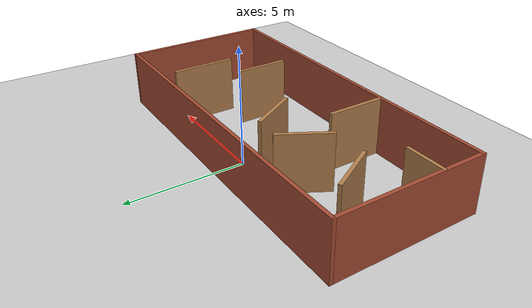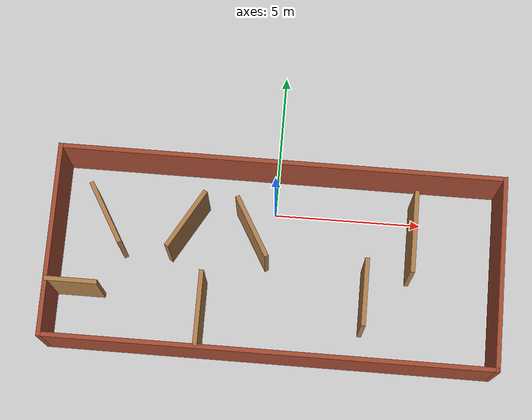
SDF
<sdf version="1.7">
 <world name="default">
  <light name="sun" type="directional">
   <pose>0 0 10 0 -0 0</pose>
   <diffuse>0.8 0.8 0.8 1</diffuse>
   <specular>0.2 0.2 0.2 1</specular>
   <attenuation>
    <range>1000</range>
    <constant>0.9</constant>
    <linear>0.01</linear>
    <quadratic>0.001</quadratic>
   </attenuation>
   <direction>-0.5 0.1 -0.9</direction>
   <spot><inner_angle>0</inner_angle><outer_angle>0</outer_angle><falloff>0</falloff></spot>
  </light>
  <model name="ground_plane">
   <static>1</static>
   <link name="link">
    <collision name="collision">
     <geometry><plane><normal>0 0 1</normal><size>100 100</size></plane></geometry>
     <surface>
      <contact><collide_bitmask>65535</collide_bitmask></contact>
      <friction><ode><mu>100</mu><mu2>50</mu2></ode></friction>
     </surface>
    </collision>
    <visual name="visual">
     <cast_shadows>0</cast_shadows>
     <geometry><plane><normal>0 0 1</normal><size>100 100</size></plane></geometry>
     <material>
      <script><uri>file://media/materials/scripts/gazebo.material</uri><name>Gazebo/Grey</name></script>
     </material>
    </visual>
   </link>
  </model>
  <gravity>0 0 -9.8</gravity>
  <magnetic_field>6e-06 2.3e-05 -4.2e-05</magnetic_field>
  <atmosphere type="adiabatic"/>
  <physics type="ode">
   <max_step_size>0.001</max_step_size>
   <real_time_factor>1</real_time_factor>
   <real_time_update_rate>1000</real_time_update_rate>
  </physics>
  <scene><ambient>0.4 0.4 0.4 1</ambient><background>0.7 0.7 0.7 1</background><shadows>1</shadows></scene>
  <spherical_coordinates>
   <surface_model>EARTH_WGS84</surface_model>
   <latitude_deg>0</latitude_deg>
   <longitude_deg>0</longitude_deg>
   <elevation>0</elevation>
   <heading_deg>0</heading_deg>
  </spherical_coordinates>
  <model name="map5">
   <pose>0.125 -1.935 0 0 -0 0</pose>
   <link name="Wall_10">
    <collision name="Wall_10_Collision">
     <geometry><box><size>2.25 0.15 2.5</size></box></geometry>
     <pose>0 0 1.25 0 -0 0</pose>
    </collision>
    <visual name="Wall_10_Visual">
     <pose>0 0 1.25 0 -0 0</pose>
     <geometry><box><size>2.25 0.15 2.5</size></box></geometry>
     <material>
      <script><uri>file://media/materials/scripts/gazebo.material</uri><name>Gazebo/Wood</name></script>
      <ambient>1 1 1 1</ambient>
     </material>
     <meta><layer>0</layer></meta>
    </visual>
    <pose>-5.698 1.01767 0 0 -0 -1.0472</pose>
   </link>
   <link name="Wall_13">
    <collision name="Wall_13_Collision">
     <geometry><box><size>2.25 0.15 2.5</size></box></geometry>
     <pose>0 0 1.25 0 -0 0</pose>
    </collision>
    <visual name="Wall_13_Visual">
     <pose>0 0 1.25 0 -0 0</pose>
     <geometry><box><size>2.25 0.15 2.5</size></box></geometry>
     <material>
      <script><uri>file://media/materials/scripts/gazebo.material</uri><name>Gazebo/Wood</name></script>
      <ambient>1 1 1 1</ambient>
     </material>
     <meta><layer>0</layer></meta>
    </visual>
    <pose>-3.03 1.01933 0 0 -0 1.0472</pose>
   </link>
   <link name="Wall_15">
    <collision name="Wall_15_Collision">
     <geometry><box><size>2.75 0.15 2.5</size></box></geometry>
     <pose>0 0 1.25 0 -0 0</pose>
    </collision>
    <visual name="Wall_15_Visual">
     <pose>0 0 1.25 0 -0 0</pose>
     <geometry><box><size>2.75 0.15 2.5</size></box></geometry>
     <material>
      <script><uri>file://media/materials/scripts/gazebo.material</uri><name>Gazebo/Wood</name></script>
      <ambient>1 1 1 1</ambient>
     </material>
     <meta><layer>0</layer></meta>
    </visual>
    <pose>4.518 1.179 0 0 -0 -1.5708</pose>
   </link>
   <link name="Wall_18">
    <collision name="Wall_18_Collision">
     <geometry><box><size>2.25 0.15 2.5</size></box></geometry>
     <pose>0 0 1.25 0 -0 0</pose>
    </collision>
    <visual name="Wall_18_Visual">
     <pose>0 0 1.25 0 -0 0</pose>
     <geometry><box><size>2.25 0.15 2.5</size></box></geometry>
     <material>
      <script><uri>file://media/materials/scripts/gazebo.material</uri><name>Gazebo/Wood</name></script>
      <ambient>1 1 1 1</ambient>
     </material>
     <meta><layer>0</layer></meta>
    </visual>
    <pose>3.023 -0.963 0 0 -0 -1.5708</pose>
   </link>
   <link name="Wall_2">
    <collision name="Wall_2_Collision">
     <geometry><box><size>15 0.15 2.5</size></box></geometry>
     <pose>0 0 1.25 0 -0 0</pose>
    </collision>
    <visual name="Wall_2_Visual">
     <pose>0 0 1.25 0 -0 0</pose>
     <geometry><box><size>15 0.15 2.5</size></box></geometry>
     <material>
      <script><uri>file://media/materials/scripts/gazebo.material</uri><name>Gazebo/Bricks</name></script>
      <ambient>1 1 1 1</ambient>
     </material>
     <meta><layer>0</layer></meta>
    </visual>
    <pose>0 -3.175 0 0 -0 0</pose>
   </link>
   <link name="Wall_20">
    <collision name="Wall_20_Collision">
     <geometry><box><size>2.25 0.15 2.5</size></box></geometry>
     <pose>0 0 1.25 0 -0 0</pose>
    </collision>
    <visual name="Wall_20_Visual">
     <pose>0 0 1.25 0 -0 0</pose>
     <geometry><box><size>2.25 0.15 2.5</size></box></geometry>
     <material>
      <script><uri>file://media/materials/scripts/gazebo.material</uri><name>Gazebo/Wood</name></script>
      <ambient>1 1 1 1</ambient>
     </material>
     <meta><layer>0</layer></meta>
    </visual>
    <pose>-0.845 0.925673 0 0 -0 -1.0472</pose>
   </link>
   <link name="Wall_22">
    <collision name="Wall_22_Collision">
     <geometry><box><size>2.5 0.15 2.5</size></box></geometry>
     <pose>0 0 1.25 0 -0 0</pose>
    </collision>
    <visual name="Wall_22_Visual">
     <pose>0 0 1.25 0 -0 0</pose>
     <geometry><box><size>2.5 0.15 2.5</size></box></geometry>
     <material>
      <script><uri>file://media/materials/scripts/gazebo.material</uri><name>Gazebo/Wood</name></script>
      <ambient>1 1 1 1</ambient>
     </material>
     <meta><layer>0</layer></meta>
    </visual>
    <pose>-2.359 -1.912 0 0 -0 1.5708</pose>
   </link>
   <link name="Wall_24">
    <collision name="Wall_24_Collision">
     <geometry><box><size>1.75 0.15 2.5</size></box></geometry>
     <pose>0 0 1.25 0 -0 0</pose>
    </collision>
    <visual name="Wall_24_Visual">
     <pose>0 0 1.25 0 -0 0</pose>
     <geometry><box><size>1.75 0.15 2.5</size></box></geometry>
     <material>
      <script><uri>file://media/materials/scripts/gazebo.material</uri><name>Gazebo/Wood</name></script>
      <ambient>1 1 1 1</ambient>
     </material>
     <meta><layer>0</layer></meta>
    </visual>
    <pose>-6.596 -1.339 0 0 -0 0</pose>
   </link>
   <link name="Wall_6">
    <collision name="Wall_6_Collision">
     <geometry><box><size>6.5 0.15 2.5</size></box></geometry>
     <pose>0 0 1.25 0 -0 0</pose>
    </collision>
    <visual name="Wall_6_Visual">
     <pose>0 0 1.25 0 -0 0</pose>
     <geometry><box><size>6.5 0.15 2.5</size></box></geometry>
     <material>
      <script><uri>file://media/materials/scripts/gazebo.material</uri><name>Gazebo/Bricks</name></script>
      <ambient>1 1 1 1</ambient>
     </material>
     <meta><layer>0</layer></meta>
    </visual>
    <pose>7.425 0 0 0 -0 1.5708</pose>
   </link>
   <link name="Wall_7">
    <collision name="Wall_7_Collision">
     <geometry><box><size>15 0.15 2.5</size></box></geometry>
     <pose>0 0 1.25 0 -0 0</pose>
    </collision>
    <visual name="Wall_7_Visual">
     <pose>0 0 1.25 0 -0 0</pose>
     <geometry><box><size>15 0.15 2.5</size></box></geometry>
     <material>
      <script><uri>file://media/materials/scripts/gazebo.material</uri><name>Gazebo/Bricks</name></script>
      <ambient>1 1 1 1</ambient>
     </material>
     <meta><layer>0</layer></meta>
    </visual>
    <pose>0 3.175 0 0 -0 3.14159</pose>
   </link>
   <link name="Wall_8">
    <collision name="Wall_8_Collision">
     <geometry><box><size>6.5 0.15 2.5</size></box></geometry>
     <pose>0 0 1.25 0 -0 0</pose>
    </collision>
    <visual name="Wall_8_Visual">
     <pose>0 0 1.25 0 -0 0</pose>
     <geometry><box><size>6.5 0.15 2.5</size></box></geometry>
     <material>
      <script><uri>file://media/materials/scripts/gazebo.material</uri><name>Gazebo/Bricks</name></script>
      <ambient>1 1 1 1</ambient>
     </material>
     <meta><layer>0</layer></meta>
    </visual>
    <pose>-7.425 0 0 0 -0 -1.5708</pose>
   </link>
   <static>1</static>
  </model>
 </world>
</sdf>
